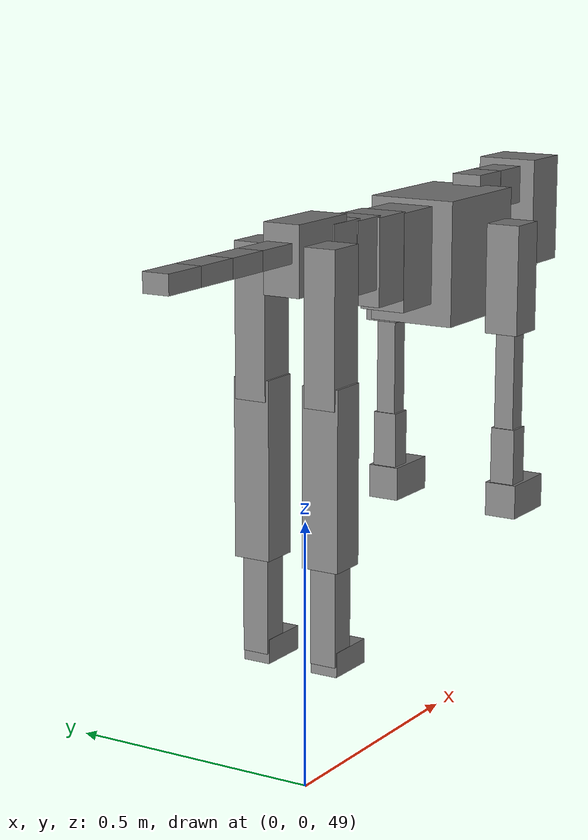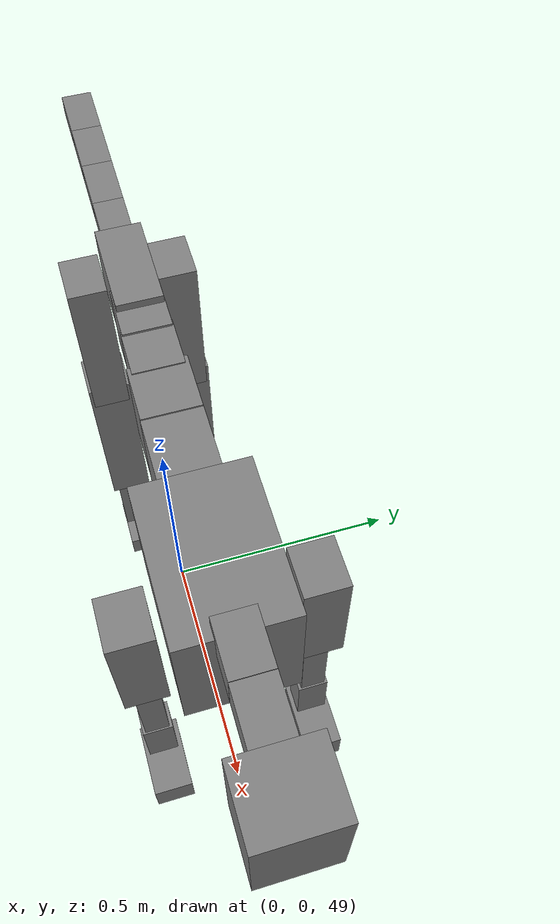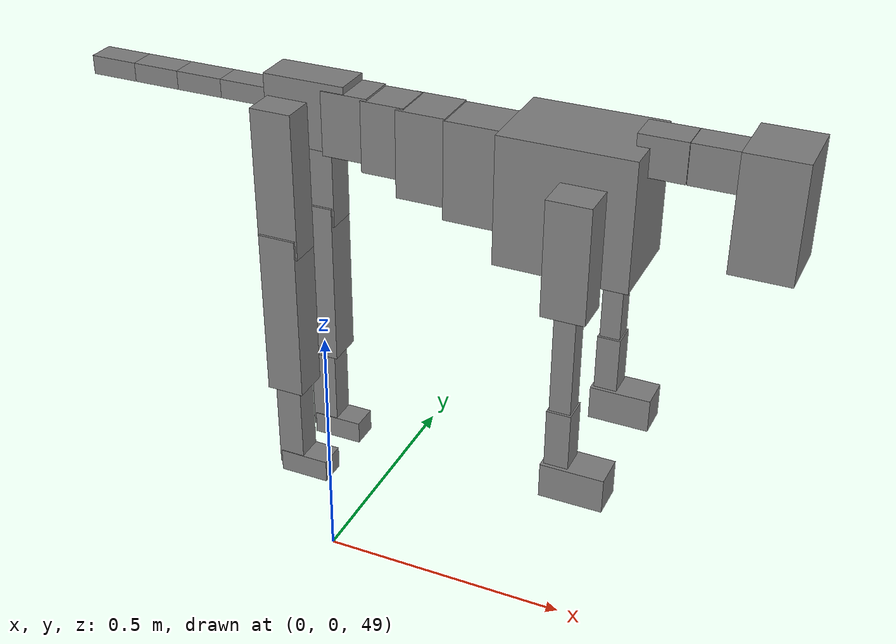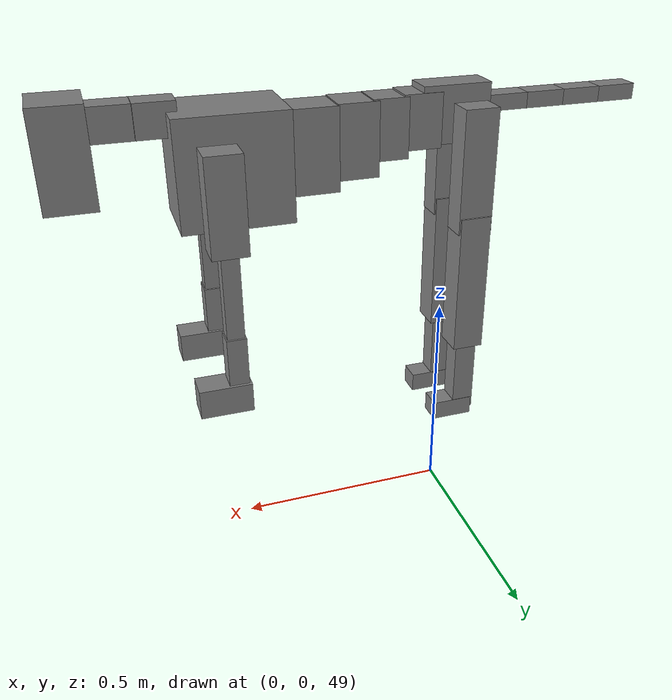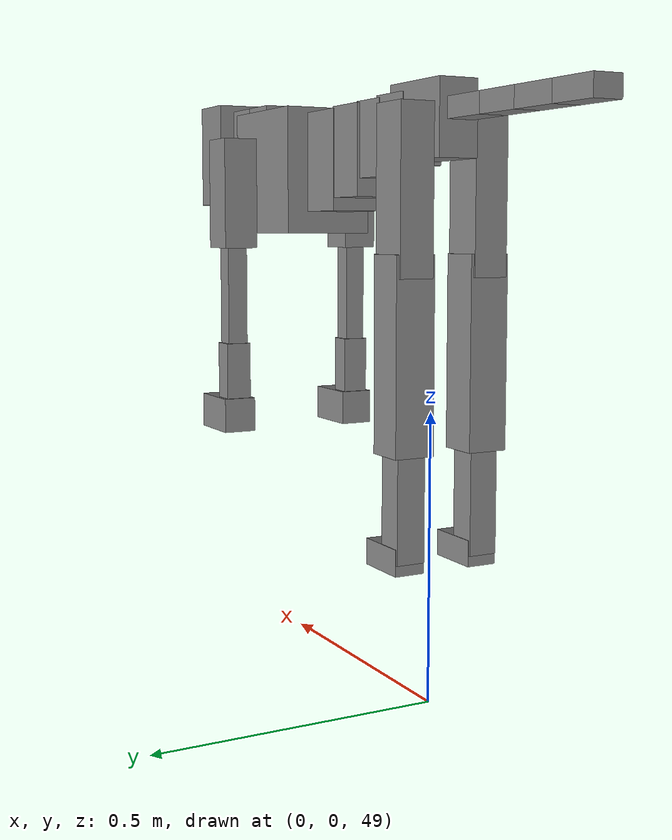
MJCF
<mujoco model="dog">

    <default>
        <joint armature="0.02" stiffness="1" damping="0.2" limited="true"/>
        <geom condim="3" friction="1 0.05 0.05" margin="0.01"/>
        <motor ctrllimited="true" ctrlrange="-1.0 1.0" forcelimited="true" gear="50"/>
    </default>

    <compiler inertiafromgeom="true" angle="radian"/>

    <option timestep="0.016" iterations="50" tolerance="1e-10" solver="Newton" jacobian="dense" cone="pyramidal"/>

    <size nconmax="20000" njmax="60000" nstack="5000000"/>
    <visual>
        <map force="0.1" zfar="30"/>
        <rgba haze="0.15 0.25 0.35 1"/>
        <quality shadowsize="2048"/>
        <global offwidth="800" offheight="800"/>
    </visual>

    <asset>
        <texture type="skybox" builtin="gradient" rgb1="0.3 0.5 0.7" rgb2="0 0 0" width="512" height="512"/>
        <texture name="texplane" type="2d" builtin="checker" rgb1=".2 .3 .4" rgb2=".1 0.15 0.2" width="512" height="512"
                 mark="cross" markrgb=".8 .8 .8"/>
        <texture name="texgeom" type="cube" builtin="flat" mark="cross" width="127" height="1278" rgb1="0.8 0.6 0.4"
                 rgb2="0.8 0.6 0.4" markrgb="1 1 1" random="0.01"/>

        <material name="matplane" reflectance="0.3" texture="texplane" texrepeat="1 1" texuniform="true"/>
        <material name="matgeom" texture="texgeom" texuniform="true" rgba="0.8 0.6 .4 1"/>
    </asset>

    <worldbody>
        <geom name="floor" pos="0 0 0" size="0 0 .25" type="plane" material="matplane" condim="3"/>

        <light directional="false" diffuse=".2 .2 .2" specular="0 0 0" pos="0 0 5" dir="0 0 -1" castshadow="false"/>
        <light mode="targetbodycom" target="torso" directional="false" diffuse=".8 .8 .8" specular="0.3 0.3 0.3"
               pos="0 0 4.0" dir="0 0 -1"/>

        <body name="root" pos="0 0 50">
            <freejoint name="root_1"/>
            <geom type="box" pos="0 0 -0.02" size="0.0774  0.0358  0.063" density="2030"/>

            <body name="spine1" pos="0.054 0 0">
                <joint name="spine1_y" axis="0 1 0" range="0 0.7" limited="true"/>
                <geom type="box" pos="0.02375 0 -0.03" size="0.04375  0.0375  0.05985" density="2030"/>

                <body name="spine2" pos="0.0612 0 0">
                    <joint name="spine2_y" axis="0 1 0" range="-0.15 0.15" limited="true"/>
                    <geom type="box" pos="0.03555  0  -0.04" size="0.04055  0.039  0.06615" density="2030"/>

                    <body name="spine3" pos="0.0730 0 0">
                        <joint name="spine3_y" axis="0 1 0" range="-0.15 0.15" limited="true"/>
                        <geom type="box" pos="0.03555  0  -0.057" size="0.04555  0.0445  0.081" density="2030"/>

                        <body name="spine4" pos="0.0780 0 0">
                            <joint name="spine4_y" axis="0 1 0" range="-0.15 0.15" limited="true"/>
                            <geom type="box" pos="0.05265  0  -0.07" size="0.05265  0.045  0.09135" density="2030"/>

                            <body name="torso" pos="0.1082 0 0">
                                <joint name="torso_y" axis="0 1 0" range="-0.15 0.15" limited="true"/>
                                <geom type="box" pos="0.11925  0  -0.085" size="0.11925  0.085  0.11745"
                                      density="2030"/>

                                <body name="neck1" pos="0.2160  0   0.0180">
                                    <joint name="neck1_y" axis="0 1 0" range="-1.2  -1" limited="true"/>
                                    <geom type="box" pos="0.0423  0  0" size="0.0423  0.03  0.036" density="2325"/>

                                    <body name="neck2" pos="0.0853  0  0">
                                        <joint name="neck2_y" axis="0 1 0" range="0.1  0" limited="true"/>
                                        <geom type="box" pos="0.0423  0  0" size="0.0423  0.03  0.036" density="2325"/>

                                        <body name="head" pos="0.0853  0  0">
                                            <joint name="head_y" axis="0 1 0" range="-0.3  -0.2" limited="true"/>
                                            <geom type="box" pos="0.0531  0  -0.055" size="0.0531  0.06  0.1044"
                                                  density="4030"/>

                                        </body>
                                    </body>
                                </body>

                                <body name="front_shoulder" pos="0.156  0   -0.0480">
                                    <joint name="front_shoulder_y" axis="0 1 0" range="-1 1.5" limited="true"/>
                                    <geom type="box" pos="0 0.13 -0.0780" size="0.0389  0.0332  0.1047" density="1158"/>
                                    <geom type="box" pos="0 -0.13 -0.0780" size="0.0389  0.0332  0.1047"
                                          density="1158"/>

                                    <body name="front_elbow" pos="0  0  -0.1561">
                                        <joint name="front_elbow_y" axis="0 1 0" range="-2 0" limited="true"/>
                                        <geom type="box" pos="0 0.13 -0.1133" size="0.0191  0.0195  0.1133"
                                              density="1081"/>
                                        <geom type="box" pos="0 -0.13 -0.1133" size="0.0191  0.0195  0.1133"
                                              density="1081"/>

                                        <body name="front_wrist" pos="0  0  -0.2267">
                                            <joint name="front_wrist_y" axis="0 1 0" range="-0.2 0" limited="true"/>
                                            <geom type="box" pos="0 0.13 -0.0552" size="0.0218  0.0243  0.0683"
                                                  density="1664"/>
                                            <geom type="box" pos="0 -0.13 -0.0552" size="0.0218  0.0243  0.0683"
                                                  density="1664"/>

                                            <body name="front_finger_end" pos="0  0  -0.1103">
                                                <joint name="front_finger_y" axis="0 1 0" range="-0.4 1"
                                                       limited="true"/>
                                                <geom type="box" pos="0.0315  0.13  -0.0180"
                                                      size="0.0577  0.0315  0.0330" density="1515"/>
                                                <geom type="box" pos="0.0315  -0.13  -0.0180"
                                                      size="0.0577  0.0315  0.0330" density="1515"/>

                                            </body>

                                        </body>
                                    </body>
                                </body>

                            </body>
                        </body>
                    </body>
                </body>
            </body>

            <body name="back_hip" pos="-0.03 0 -0.018">
                <joint name="back_hip_y" axis="0 1 0" range="-1.5 0.3" limited="true"/>
                <geom type="box" pos="0 0.07 -0.1164" size="0.0389  0.0305  0.1392" density="1154"/>
                <geom type="box" pos="0 -0.07 -0.1164" size="0.0389  0.0305  0.1392" density="1154"/>

                <body name="back_knee" pos="0  0  -0.2329">
                    <joint name="back_knee_y" axis="0 1 0" range="0 2.8" limited="true"/>
                    <geom type="box" pos="0 0.07 -0.1476" size="0.0358  0.0353  0.1631" density="1227"/>
                    <geom type="box" pos="0 -0.07 -0.1476" size="0.0358  0.0353  0.1631" density="1227"/>

                    <body name="back_ankle" pos="0  0  -0.2951">
                        <joint name="back_ankle_y" axis="0 1 0" range="-2.2 0" limited="true"/>
                        <geom type="box" pos="0 0.07 -0.0906" size="0.0254  0.0254  0.1018" density="1284"/>
                        <geom type="box" pos="0 -0.07 -0.0906" size="0.0254  0.0254  0.1018" density="1284"/>

                        <body name="back_toe_end" pos="0  0  -0.1811">
                            <joint name="back_toe_y" axis="0 1 0" range="-0.4 1" limited="true"/>
                            <geom type="box" pos="0.0265  0.07  -0.0075" size="0.0485  0.0265  0.0225" density="1515"/>
                            <geom type="box" pos="0.0265  -0.07  -0.0075" size="0.0485  0.0265  0.0225" density="1515"/>

                        </body>
                    </body>
                </body>
            </body>

            <body name="tail1" pos="-0.074 0 -0.006">
                <joint name="tail1_y" axis="0 1 0" range="-0.2 0.2" limited="true"/>
                <geom type="box" pos="-0.0536  0  0" size="0.045  0.025  0.0175" density="1587"/>

                <body name="tail2" pos="-0.09 0 0">
                    <joint name="tail2_y" axis="0 1 0" range="-0.2 0.2" limited="true"/>
                    <geom type="box" pos="-0.0536  0  0" size="0.045  0.025  0.0175" density="1587"/>

                    <body name="tail3" pos="-0.09 0 0">
                        <joint name="tail3_y" axis="0 1 0" range="-0.2 0.2" limited="true"/>
                        <geom type="box" pos="-0.0536  0  0" size="0.045  0.025  0.0175" density="1587"/>

                        <body name="tail4" pos="-0.09 0 0">
                            <joint name="tail4_y" axis="0 1 0" range="-0.2 0.2" limited="true"/>
                            <geom type="box" pos="-0.0536  0  0" size="0.045  0.025  0.0175" density="1587"/>

                        </body>
                    </body>
                </body>
            </body>
        </body>
    </worldbody>

    <actuator>
        <motor joint="spine1_y" forcerange="-150 150     "/>
        <motor joint="spine2_y" forcerange="-150 150     "/>
        <motor joint="spine3_y" forcerange="-150 150     "/>
        <motor joint="spine4_y" forcerange="-150 150     "/>
        <motor joint="torso_y" forcerange="-150 150     "/>
        <motor joint="neck1_y" forcerange="-100 100       "/>
        <motor joint="neck2_y" forcerange="-100 100       "/>
        <motor joint="head_y" forcerange="-150 150       "/>
        <motor joint="front_shoulder_y" forcerange="-158.83 162.69"/>
        <motor joint="front_elbow_y" forcerange="-138.92 103.19"/>
        <motor joint="front_wrist_y" forcerange="-79.91 114.28"/>
        <motor joint="front_finger_y" forcerange="-40.94 86.89"/>
        <motor joint="back_hip_y" forcerange="-293.41 313.16"/>
        <motor joint="back_knee_y" forcerange="-353.32 359.84"/>
        <motor joint="back_angle_y" forcerange="-238.78 67.41"/>
        <motor joint="back_toe_y" forcerange="-34.35 97.42"/>
        <motor joint="tail1_y" forcerange="-50 50     "/>
        <motor joint="tail2_y" forcerange="-50 50     "/>
        <motor joint="tail3_y" forcerange="-50 50     "/>
        <motor joint="tail4_y" forcerange="-50 50     "/>
    </actuator>
</mujoco>
